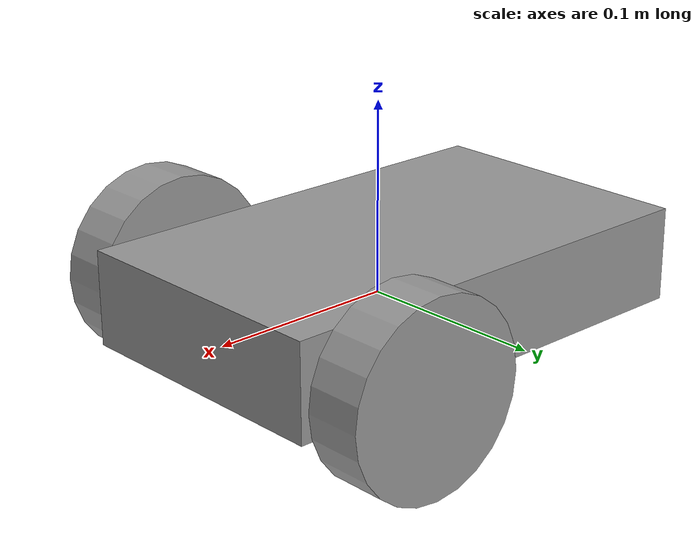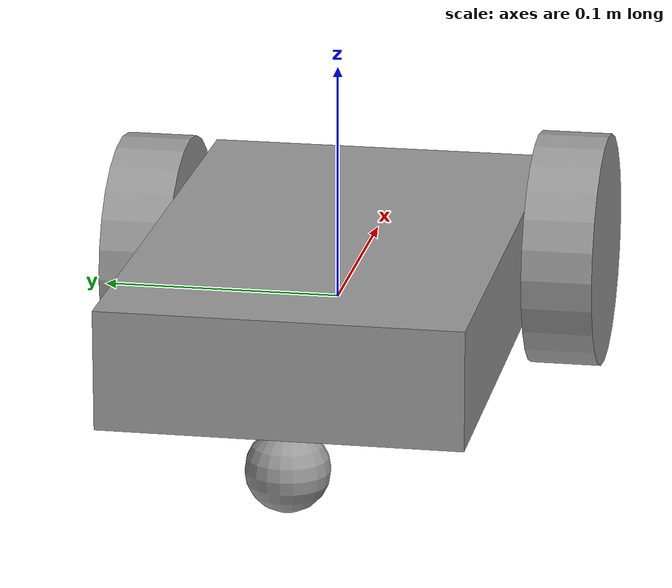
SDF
<?xml version='1.0'?>
<sdf version='1.5'>
  <model name='bfl_3'>
    <link name='link_0'>
      <inertial>
        <mass>1</mass>
        <inertia>
          <ixx>0.166667</ixx>
          <ixy>0</ixy>
          <ixz>0</ixz>
          <iyy>0.166667</iyy>
          <iyz>0</iyz>
          <izz>0.166667</izz>
        </inertia>
        <pose>0 0 0 0 -0 0</pose>
      </inertial>
      <pose>-0.008527 0.000321 0.006876 0 -0 0</pose>
      <gravity>1</gravity>
      <self_collide>0</self_collide>
      <kinematic>0</kinematic>
      <enable_wind>0</enable_wind>
      <visual name='visual'>
        <pose>0 0 0 0 -0 0</pose>
        <geometry>
          <box>
            <size>0.25 0.15 0.05</size>
          </box>
        </geometry>
        <material>
          <lighting>1</lighting>
          <script>
            <uri>file://media/materials/scripts/gazebo.material</uri>
            <name>Gazebo/Grey</name>
          </script>
          <shader type='pixel'>
            <normal_map>__default__</normal_map>
          </shader>
          <ambient>0.3 0.3 0.3 1</ambient>
          <diffuse>0.7 0.7 0.7 1</diffuse>
          <specular>0.01 0.01 0.01 1</specular>
          <emissive>0 0 0 1</emissive>
        </material>
        <transparency>0</transparency>
        <cast_shadows>1</cast_shadows>
      </visual>
      <collision name='collision'>
        <laser_retro>0</laser_retro>
        <max_contacts>10</max_contacts>
        <pose>0 0 0 0 -0 0</pose>
        <geometry>
          <box>
            <size>0.25 0.15 0.05</size>
          </box>
        </geometry>
        <surface>
          <friction>
            <ode>
              <mu>1</mu>
              <mu2>1</mu2>
              <fdir1>0 0 0</fdir1>
              <slip1>0</slip1>
              <slip2>0</slip2>
            </ode>
            <torsional>
              <coefficient>1</coefficient>
              <patch_radius>0</patch_radius>
              <surface_radius>0</surface_radius>
              <use_patch_radius>1</use_patch_radius>
              <ode>
                <slip>0</slip>
              </ode>
            </torsional>
          </friction>
          <bounce>
            <restitution_coefficient>0</restitution_coefficient>
            <threshold>1e+06</threshold>
          </bounce>
          <contact>
            <collide_without_contact>0</collide_without_contact>
            <collide_without_contact_bitmask>1</collide_without_contact_bitmask>
            <collide_bitmask>1</collide_bitmask>
            <ode>
              <soft_cfm>0</soft_cfm>
              <soft_erp>0.2</soft_erp>
              <kp>1e+13</kp>
              <kd>1</kd>
              <max_vel>0.01</max_vel>
              <min_depth>0</min_depth>
            </ode>
            <bullet>
              <split_impulse>1</split_impulse>
              <split_impulse_penetration_threshold>-0.01</split_impulse_penetration_threshold>
              <soft_cfm>0</soft_cfm>
              <soft_erp>0.2</soft_erp>
              <kp>1e+13</kp>
              <kd>1</kd>
            </bullet>
          </contact>
        </surface>
      </collision>
    </link>
    <link name='link_1'>
      <inertial>
        <mass>1</mass>
        <inertia>
          <ixx>0.145833</ixx>
          <ixy>0</ixy>
          <ixz>0</ixz>
          <iyy>0.145833</iyy>
          <iyz>0</iyz>
          <izz>0.125</izz>
        </inertia>
        <pose>0 0 0 0 -0 0</pose>
      </inertial>
      <pose>0.06312 0.091313 -0.003127 1.5708 -0 0</pose>
      <gravity>1</gravity>
      <self_collide>0</self_collide>
      <kinematic>0</kinematic>
      <enable_wind>0</enable_wind>
      <visual name='visual'>
        <pose>0 0 0 0 -0 0</pose>
        <geometry>
          <cylinder>
            <radius>0.05</radius>
            <length>0.03</length>
          </cylinder>
        </geometry>
        <material>
          <lighting>1</lighting>
          <script>
            <uri>file://media/materials/scripts/gazebo.material</uri>
            <name>Gazebo/Grey</name>
          </script>
          <shader type='pixel'>
            <normal_map>__default__</normal_map>
          </shader>
          <ambient>0.3 0.3 0.3 1</ambient>
          <diffuse>0.7 0.7 0.7 1</diffuse>
          <specular>0.01 0.01 0.01 1</specular>
          <emissive>0 0 0 1</emissive>
        </material>
        <transparency>0</transparency>
        <cast_shadows>1</cast_shadows>
      </visual>
      <collision name='collision'>
        <laser_retro>0</laser_retro>
        <max_contacts>10</max_contacts>
        <pose>0 0 0 0 -0 0</pose>
        <geometry>
          <cylinder>
            <radius>0.05</radius>
            <length>0.03</length>
          </cylinder>
        </geometry>
        <surface>
          <friction>
            <ode>
              <mu>1</mu>
              <mu2>1</mu2>
              <fdir1>0 0 0</fdir1>
              <slip1>0</slip1>
              <slip2>0</slip2>
            </ode>
            <torsional>
              <coefficient>1</coefficient>
              <patch_radius>0</patch_radius>
              <surface_radius>0</surface_radius>
              <use_patch_radius>1</use_patch_radius>
              <ode>
                <slip>0</slip>
              </ode>
            </torsional>
          </friction>
          <bounce>
            <restitution_coefficient>0</restitution_coefficient>
            <threshold>1e+06</threshold>
          </bounce>
          <contact>
            <collide_without_contact>0</collide_without_contact>
            <collide_without_contact_bitmask>1</collide_without_contact_bitmask>
            <collide_bitmask>1</collide_bitmask>
            <ode>
              <soft_cfm>0</soft_cfm>
              <soft_erp>0.2</soft_erp>
              <kp>1e+13</kp>
              <kd>1</kd>
              <max_vel>0.01</max_vel>
              <min_depth>0</min_depth>
            </ode>
            <bullet>
              <split_impulse>1</split_impulse>
              <split_impulse_penetration_threshold>-0.01</split_impulse_penetration_threshold>
              <soft_cfm>0</soft_cfm>
              <soft_erp>0.2</soft_erp>
              <kp>1e+13</kp>
              <kd>1</kd>
            </bullet>
          </contact>
        </surface>
      </collision>
    </link>
    <link name='link_1_clone'>
      <inertial>
        <mass>1</mass>
        <inertia>
          <ixx>0.145833</ixx>
          <ixy>0</ixy>
          <ixz>0</ixz>
          <iyy>0.145833</iyy>
          <iyz>0</iyz>
          <izz>0.125</izz>
        </inertia>
        <pose>0 0 0 0 -0 0</pose>
      </inertial>
      <pose>0.06312 -0.090904 0.006876 1.5708 -0 0</pose>
      <gravity>1</gravity>
      <self_collide>0</self_collide>
      <kinematic>0</kinematic>
      <enable_wind>0</enable_wind>
      <visual name='visual'>
        <pose>0 0 0 0 -0 0</pose>
        <geometry>
          <cylinder>
            <radius>0.05</radius>
            <length>0.03</length>
          </cylinder>
        </geometry>
        <material>
          <lighting>1</lighting>
          <script>
            <uri>file://media/materials/scripts/gazebo.material</uri>
            <name>Gazebo/Grey</name>
          </script>
          <shader type='pixel'>
            <normal_map>__default__</normal_map>
          </shader>
          <ambient>0.3 0.3 0.3 1</ambient>
          <diffuse>0.7 0.7 0.7 1</diffuse>
          <specular>0.01 0.01 0.01 1</specular>
          <emissive>0 0 0 1</emissive>
        </material>
        <transparency>0</transparency>
        <cast_shadows>1</cast_shadows>
      </visual>
      <collision name='collision'>
        <laser_retro>0</laser_retro>
        <max_contacts>10</max_contacts>
        <pose>0 0 0 0 -0 0</pose>
        <geometry>
          <cylinder>
            <radius>0.05</radius>
            <length>0.03</length>
          </cylinder>
        </geometry>
        <surface>
          <friction>
            <ode>
              <mu>1</mu>
              <mu2>1</mu2>
              <fdir1>0 0 0</fdir1>
              <slip1>0</slip1>
              <slip2>0</slip2>
            </ode>
            <torsional>
              <coefficient>1</coefficient>
              <patch_radius>0</patch_radius>
              <surface_radius>0</surface_radius>
              <use_patch_radius>1</use_patch_radius>
              <ode>
                <slip>0</slip>
              </ode>
            </torsional>
          </friction>
          <bounce>
            <restitution_coefficient>0</restitution_coefficient>
            <threshold>1e+06</threshold>
          </bounce>
          <contact>
            <collide_without_contact>0</collide_without_contact>
            <collide_without_contact_bitmask>1</collide_without_contact_bitmask>
            <collide_bitmask>1</collide_bitmask>
            <ode>
              <soft_cfm>0</soft_cfm>
              <soft_erp>0.2</soft_erp>
              <kp>1e+13</kp>
              <kd>1</kd>
              <max_vel>0.01</max_vel>
              <min_depth>0</min_depth>
            </ode>
            <bullet>
              <split_impulse>1</split_impulse>
              <split_impulse_penetration_threshold>-0.01</split_impulse_penetration_threshold>
              <soft_cfm>0</soft_cfm>
              <soft_erp>0.2</soft_erp>
              <kp>1e+13</kp>
              <kd>1</kd>
            </bullet>
          </contact>
        </surface>
      </collision>
    </link>
    <link name='link_2'>
      <inertial>
        <mass>1</mass>
        <inertia>
          <ixx>0.1</ixx>
          <ixy>0</ixy>
          <ixz>0</ixz>
          <iyy>0.1</iyy>
          <iyz>0</iyz>
          <izz>0.1</izz>
        </inertia>
        <pose>0 0 0 0 -0 0</pose>
      </inertial>
      <pose>-0.117713 -0.00073 -0.035624 0 -0 0</pose>
      <gravity>1</gravity>
      <self_collide>0</self_collide>
      <kinematic>0</kinematic>
      <enable_wind>0</enable_wind>
      <visual name='visual'>
        <pose>0 0 0 0 -0 0</pose>
        <geometry>
          <sphere>
            <radius>0.0175</radius>
          </sphere>
        </geometry>
        <material>
          <lighting>1</lighting>
          <script>
            <uri>file://media/materials/scripts/gazebo.material</uri>
            <name>Gazebo/Grey</name>
          </script>
          <shader type='pixel'>
            <normal_map>__default__</normal_map>
          </shader>
          <ambient>0.3 0.3 0.3 1</ambient>
          <diffuse>0.7 0.7 0.7 1</diffuse>
          <specular>0.01 0.01 0.01 1</specular>
          <emissive>0 0 0 1</emissive>
        </material>
        <transparency>0</transparency>
        <cast_shadows>1</cast_shadows>
      </visual>
      <collision name='collision'>
        <laser_retro>0</laser_retro>
        <max_contacts>10</max_contacts>
        <pose>0 0 0 0 -0 0</pose>
        <geometry>
          <sphere>
            <radius>0.0175</radius>
          </sphere>
        </geometry>
        <surface>
          <friction>
            <ode>
              <mu>1</mu>
              <mu2>1</mu2>
              <fdir1>0 0 0</fdir1>
              <slip1>0</slip1>
              <slip2>0</slip2>
            </ode>
            <torsional>
              <coefficient>1</coefficient>
              <patch_radius>0</patch_radius>
              <surface_radius>0</surface_radius>
              <use_patch_radius>1</use_patch_radius>
              <ode>
                <slip>0</slip>
              </ode>
            </torsional>
          </friction>
          <bounce>
            <restitution_coefficient>0</restitution_coefficient>
            <threshold>1e+06</threshold>
          </bounce>
          <contact>
            <collide_without_contact>0</collide_without_contact>
            <collide_without_contact_bitmask>1</collide_without_contact_bitmask>
            <collide_bitmask>1</collide_bitmask>
            <ode>
              <soft_cfm>0</soft_cfm>
              <soft_erp>0.2</soft_erp>
              <kp>1e+13</kp>
              <kd>1</kd>
              <max_vel>0.01</max_vel>
              <min_depth>0</min_depth>
            </ode>
            <bullet>
              <split_impulse>1</split_impulse>
              <split_impulse_penetration_threshold>-0.01</split_impulse_penetration_threshold>
              <soft_cfm>0</soft_cfm>
              <soft_erp>0.2</soft_erp>
              <kp>1e+13</kp>
              <kd>1</kd>
            </bullet>
          </contact>
        </surface>
      </collision>
    </link>
    <joint name='left_wheel' type='revolute'>
      <parent>link_0</parent>
      <child>link_1</child>
      <pose>0 0 0 0 -0 0</pose>
      <axis>
        <xyz>0 0 1</xyz>
        <limit>
          <lower>-1.79769e+308</lower>
          <upper>1.79769e+308</upper>
          <effort>-1</effort>
          <velocity>-1</velocity>
        </limit>
        <dynamics>
          <spring_reference>0</spring_reference>
          <spring_stiffness>0</spring_stiffness>
          <damping>0</damping>
          <friction>0</friction>
        </dynamics>
      </axis>
      <physics>
        <ode>
          <limit>
            <cfm>0</cfm>
            <erp>0.2</erp>
          </limit>
          <suspension>
            <cfm>0</cfm>
            <erp>0.2</erp>
          </suspension>
        </ode>
      </physics>
    </joint>
    <joint name='right_wheel' type='revolute'>
      <parent>link_0</parent>
      <child>link_1_clone</child>
      <pose>0 0 0 0 -0 0</pose>
      <axis>
        <xyz>0 0 1</xyz>
        <limit>
          <lower>-1.79769e+308</lower>
          <upper>1.79769e+308</upper>
          <effort>-1</effort>
          <velocity>-1</velocity>
        </limit>
        <dynamics>
          <spring_reference>0</spring_reference>
          <spring_stiffness>0</spring_stiffness>
          <damping>0</damping>
          <friction>0</friction>
        </dynamics>
      </axis>
      <physics>
        <ode>
          <limit>
            <cfm>0</cfm>
            <erp>0.2</erp>
          </limit>
          <suspension>
            <cfm>0</cfm>
            <erp>0.2</erp>
          </suspension>
        </ode>
      </physics>
    </joint>
    <joint name='caster_wheel' type='universal'>
      <parent>link_0</parent>
      <child>link_2</child>
      <pose>0 0 0 0 -0 0</pose>
      <axis>
        <xyz>1 0 0</xyz>
        <limit>
          <lower>-1.79769e+308</lower>
          <upper>1.79769e+308</upper>
          <effort>-1</effort>
          <velocity>-1</velocity>
        </limit>
        <dynamics>
          <spring_reference>0</spring_reference>
          <spring_stiffness>0</spring_stiffness>
          <damping>0</damping>
          <friction>0</friction>
        </dynamics>
      </axis>
      <axis2>
        <xyz>0 1 0</xyz>
        <limit>
          <lower>-1e+16</lower>
          <upper>1e+16</upper>
          <effort>-1</effort>
          <velocity>-1</velocity>
        </limit>
        <dynamics>
          <spring_reference>0</spring_reference>
          <spring_stiffness>0</spring_stiffness>
          <damping>0</damping>
          <friction>0</friction>
        </dynamics>
      </axis2>
      <physics>
        <ode>
          <limit>
            <cfm>0</cfm>
            <erp>0.2</erp>
          </limit>
          <suspension>
            <cfm>0</cfm>
            <erp>0.2</erp>
          </suspension>
        </ode>
      </physics>
    </joint>
    <static>0</static>
    <allow_auto_disable>1</allow_auto_disable>
  </model>
</sdf>
